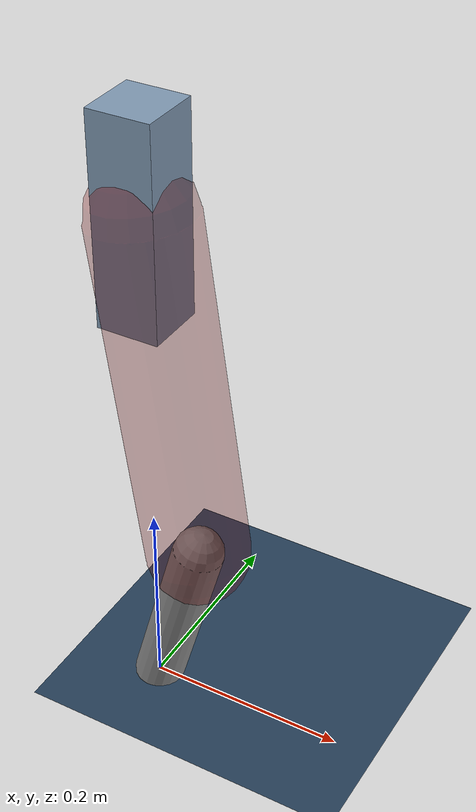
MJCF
<mujoco model="Hopper2D">
	<compiler inertiafromgeom="true" angle="radian" />
	<option timestep="0.001" integrator="implicit" cone="elliptic" solver="Newton" tolerance="1e-10" />

	<default>
		<geom contype="1" conaffinity="1" condim="3" friction="2 0.005 0.0001" solref="0.005 1" />
		<joint limited="true" damping="0.1" />
	</default>

	<asset>
		<texture name="skybox" type="skybox" builtin="gradient" rgb1=".4 .6 .8" rgb2="0 0 0" width="800" height="800" />
		<texture name="grid" type="2d" builtin="checker" rgb1=".1 .2 .3" rgb2=".2 .3 .4" width="300" height="300" mark="edge" markrgb=".2 .3 .4" />
		<material name="ground" texture="grid" texrepeat="1 1" texuniform="true" reflectance="0.1" />
		<material name="leg" rgba="0.5 0.6 0.7 1" />
	</asset>

	<worldbody>

		<geom name="floor" type="plane" size="5 5 0.25" material="ground" />

		<light directional="false" diffuse="0.8 0.8 0.8" specular="0.3 0.3 0.3" pos="0 0 2" dir="0 0 -1" />
		<light mode="targetbodycom" target="base" directional="false" diffuse="0.8 0.8 0.8" specular="0.3 0.3 0.3" pos="0 0 2" dir="0 0 -1" />

		<camera name="fixed" pos="0 -2 1" xyaxes="1 0 0 0 0 1" />
		<camera name="tracking" mode="trackcom" pos="0 -3 1" />

		<body name="root" pos="0 0 0.520687679057545">
			<joint name="slide_x" type="slide" axis="1 0 0" range="-100 100" />
			<joint name="slide_z" type="slide" axis="0 0 1" range="0 10" />

			<body name="base" pos="0 0 0">
				<geom name="torso" type="box" size="0.03 0.03 0.1" mass="1.6800000000000002" material="leg" />

				<body name="link1" pos="0 0 0" euler="0 1.4289306621340911 0">
					<joint type="hinge" axis="0 -1 0" pos="0 0 0" name="hinge1" limited="true" range="-3.14 3.14" stiffness="0" damping="0.1" />
					<geom name="thigh" type="capsule" fromto="0 0 0 0.34514633691623936 0 0" size="0.05" rgba="0.5 0 0 0.3" mass="1.1130097433654702" />

					<body name="link2" pos="0.34514633691623936 0 0" euler="0 0.4080125844349127 0">
						<joint type="hinge" axis="0 -1 0" pos="0 0 0" name="hinge2" limited="true" range="-3.14 3.14" stiffness="0" damping="0.1" />
						<geom name="shank" type="capsule" fromto="0 0 0 0.1855413421413057 0 0" size="0.025" mass="0.38863307371304456" />

					</body>
				</body>
			</body>
		</body>
	</worldbody>

	<actuator>
		<motor name="torque1" joint="hinge1" ctrlrange="-42.65040422341249 42.65040422341249" ctrllimited="true" gear="1" />
		<motor name="torque2" joint="hinge2" ctrlrange="-21.189678143002794 21.189678143002794" ctrllimited="true" gear="1" />
	</actuator>
</mujoco>
